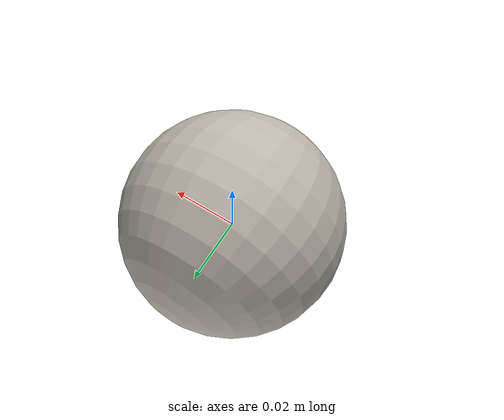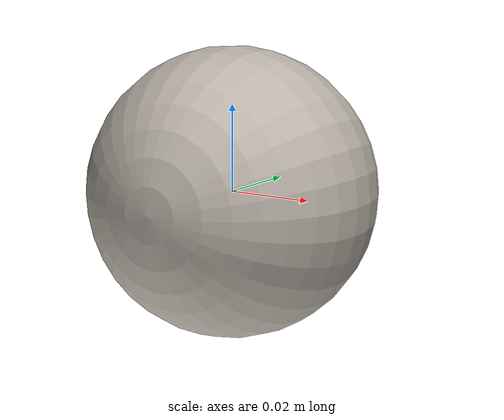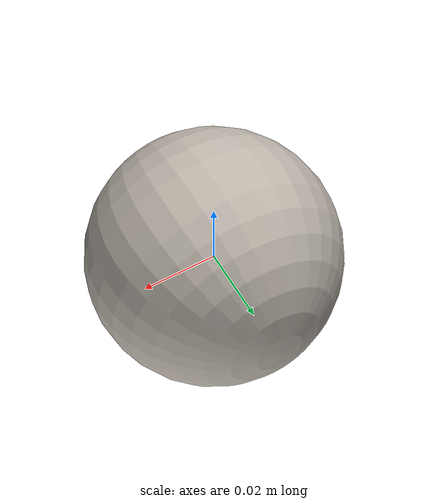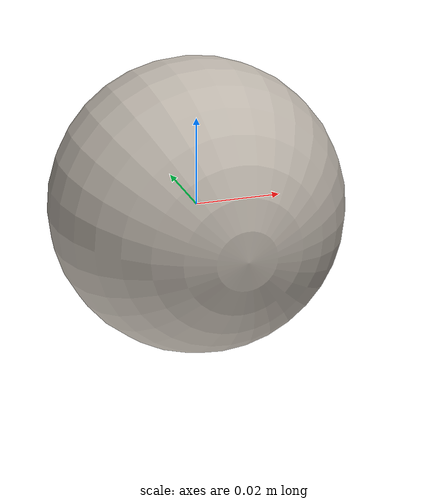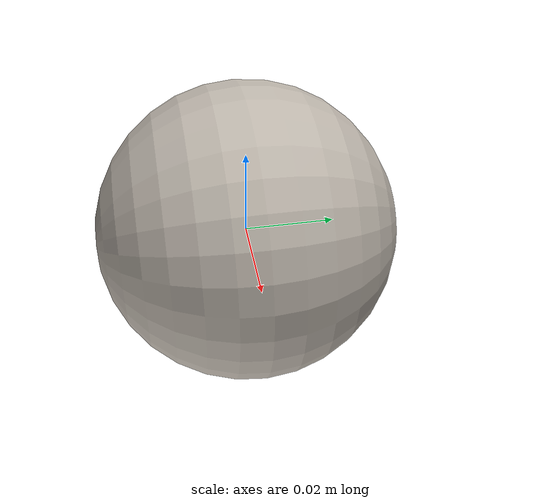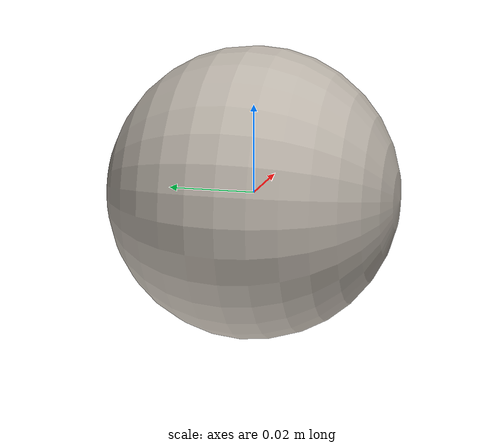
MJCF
<mujoco model="ball_52600d45">
  <compiler angle="radian"/>
  <asset>
    <texture type="2d" name="ball_52600d45_tex" file="ball_52600d45_visual_0.png"/>
    <material name="ball_52600d45_mat" texture="ball_52600d45_tex"/>
    <mesh name="ball_52600d45_visual" content_type="model/obj" file="ball_52600d45_visual.obj" scale="-0.66267 0.66267 0.66267"/>
    <mesh name="ball_52600d45_c0" content_type="model/obj" file="ball_52600d45_c0.obj" scale="-0.66267 0.66267 0.66267"/>
  </asset>
  <worldbody>
    <body name="ball_52600d45">
      <freejoint/>
      <geom name="ball_52600d45_visual" type="mesh" mesh="ball_52600d45_visual" mass="1e-8" contype="0" conaffinity="0" group="2" material="ball_52600d45_mat"/>
      <geom name="ball_52600d45_c0" type="mesh" mesh="ball_52600d45_c0" group="3" density="441.612" friction="0.9 0.05 0.005" condim="4" rgba="0.4 0.5 0.9 0.35"/>
    </body>
  </worldbody>
</mujoco>
